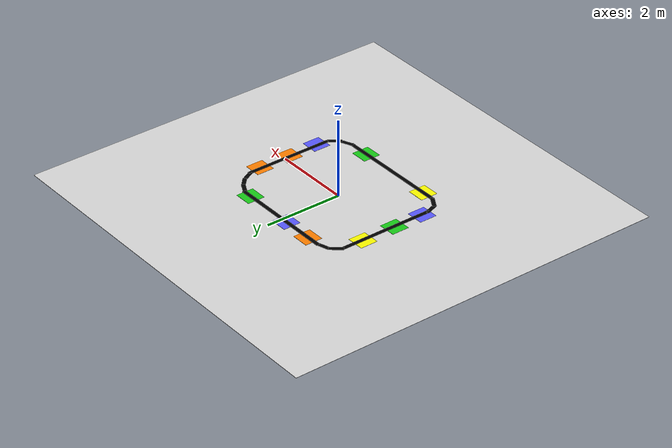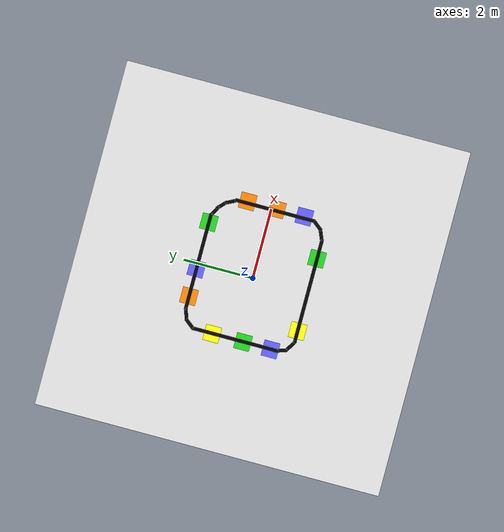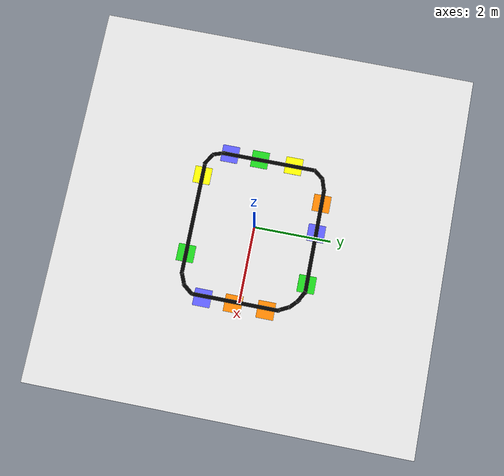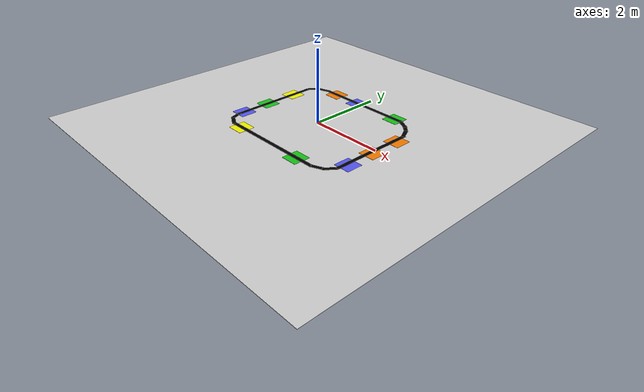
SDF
<sdf version='1.11'>
  <world name='mail_robot_track'>
    <plugin name='gz::sim::systems::Physics' filename='gz-sim-physics-system'/>
    <plugin name='gz::sim::systems::UserCommands' filename='gz-sim-user-commands-system'/>
    <plugin name='gz::sim::systems::SceneBroadcaster' filename='gz-sim-scene-broadcaster-system'/>
    <plugin name='gz::sim::systems::Sensors' filename='gz-sim-sensors-system'>
      <render_engine>ogre2</render_engine>
    </plugin>
    <gravity>0 0 -9.8000000000000007</gravity>
    <magnetic_field>5.5644999999999998e-06 2.2875799999999999e-05 -4.2388400000000002e-05</magnetic_field>
    <atmosphere type='adiabatic'/>
    <physics type='ode'>
      <max_step_size>0.001</max_step_size>
      <real_time_factor>1</real_time_factor>
      <real_time_update_rate>1000</real_time_update_rate>
    </physics>
    <scene>
      <ambient>0.400000006 0.400000006 0.400000006 1</ambient>
      <background>0.699999988 0.699999988 0.699999988 1</background>
      <shadows>true</shadows>
    </scene>
    <model name='floor'>
      <static>true</static>
      <link name='link'>
        <collision name='collision'>
          <geometry>
            <box>
              <size>10 10 0.01</size>
            </box>
          </geometry>
          <surface>
            <friction>
              <ode/>
            </friction>
            <bounce/>
            <contact/>
          </surface>
        </collision>
        <visual name='visual'>
          <geometry>
            <box>
              <size>10 10 0.01</size>
            </box>
          </geometry>
          <material>
            <ambient>0.850000024 0.850000024 0.850000024 1</ambient>
            <diffuse>0.850000024 0.850000024 0.850000024 1</diffuse>
          </material>
        </visual>
        <pose>0 0 0 0 0 0</pose>
        <inertial>
          <pose>0 0 0 0 0 0</pose>
          <mass>1</mass>
          <inertia>
            <ixx>1</ixx>
            <ixy>0</ixy>
            <ixz>0</ixz>
            <iyy>1</iyy>
            <iyz>0</iyz>
            <izz>1</izz>
          </inertia>
        </inertial>
        <enable_wind>false</enable_wind>
      </link>
      <pose>0 0 0 0 0 0</pose>
      <self_collide>false</self_collide>
    </model>
    <model name='track_top'>
      <static>true</static>
      <link name='link'>
        <visual name='visual'>
          <geometry>
            <box>
              <size>2.7999999999999998 0.10000000000000001 0.0050000000000000001</size>
            </box>
          </geometry>
          <material>
            <ambient>0 0 0 1</ambient>
            <diffuse>0 0 0 1</diffuse>
          </material>
        </visual>
        <pose>0 0 0 0 0 0</pose>
        <inertial>
          <pose>0 0 0 0 0 0</pose>
          <mass>1</mass>
          <inertia>
            <ixx>1</ixx>
            <ixy>0</ixy>
            <ixz>0</ixz>
            <iyy>1</iyy>
            <iyz>0</iyz>
            <izz>1</izz>
          </inertia>
        </inertial>
        <enable_wind>false</enable_wind>
      </link>
      <pose>0.059999999999999998 1.6000000000000001 0.02 0 0 0</pose>
      <self_collide>false</self_collide>
    </model>
    <model name='track_bottom'>
      <static>true</static>
      <link name='link'>
        <visual name='visual'>
          <geometry>
            <box>
              <size>3 0.10000000000000001 0.0050000000000000001</size>
            </box>
          </geometry>
          <material>
            <ambient>0 0 0 1</ambient>
            <diffuse>0 0 0 1</diffuse>
          </material>
        </visual>
        <pose>0 0 0 0 0 0</pose>
        <inertial>
          <pose>0 0 0 0 0 0</pose>
          <mass>1</mass>
          <inertia>
            <ixx>1</ixx>
            <ixy>0</ixy>
            <ixz>0</ixz>
            <iyy>1</iyy>
            <iyz>0</iyz>
            <izz>1</izz>
          </inertia>
        </inertial>
        <enable_wind>false</enable_wind>
      </link>
      <pose>0.050000000000000003 -1.6000000000000001 0.02 0 0 0</pose>
      <self_collide>false</self_collide>
    </model>
    <model name='track_left'>
      <static>true</static>
      <link name='link'>
        <visual name='visual'>
          <geometry>
            <box>
              <size>2.5000000000000001 0.10000000000000001 0.0050000000000000001</size>
            </box>
          </geometry>
          <material>
            <ambient>0 0 0 1</ambient>
            <diffuse>0 0 0 1</diffuse>
          </material>
        </visual>
        <pose>0 0 0 0 0 0</pose>
        <inertial>
          <pose>0 0 0 0 0 0</pose>
          <mass>1</mass>
          <inertia>
            <ixx>1</ixx>
            <ixy>0</ixy>
            <ixz>0</ixz>
            <iyy>1</iyy>
            <iyz>0</iyz>
            <izz>1</izz>
          </inertia>
        </inertial>
        <enable_wind>false</enable_wind>
      </link>
      <pose>-1.79 0.02 0.02 0 0 1.5708</pose>
      <self_collide>false</self_collide>
    </model>
    <model name='track_right'>
      <static>true</static>
      <link name='link'>
        <visual name='visual'>
          <geometry>
            <box>
              <size>2.3000000000000001 0.10000000000000001 0.0050000000000000001</size>
            </box>
          </geometry>
          <material>
            <ambient>0 0 0 1</ambient>
            <diffuse>0 0 0 1</diffuse>
          </material>
        </visual>
        <pose>0 0 0 0 0 0</pose>
        <inertial>
          <pose>0 0 0 0 0 0</pose>
          <mass>1</mass>
          <inertia>
            <ixx>1</ixx>
            <ixy>0</ixy>
            <ixz>0</ixz>
            <iyy>1</iyy>
            <iyz>0</iyz>
            <izz>1</izz>
          </inertia>
        </inertial>
        <enable_wind>false</enable_wind>
      </link>
      <pose>2 -0.1 0.02 0 0 1.5708000000000006</pose>
      <self_collide>false</self_collide>
    </model>
    <model name='corner_tr_1'>
      <static>true</static>
      <link name='link'>
        <visual name='visual'>
          <geometry>
            <box>
              <size>0.34999999999999998 0.10000000000000001 0.0050000000000000001</size>
            </box>
          </geometry>
          <material>
            <ambient>0 0 0 1</ambient>
            <diffuse>0 0 0 1</diffuse>
          </material>
        </visual>
        <pose>0 0 0 0 0 0</pose>
        <inertial>
          <pose>0 0 0 0 0 0</pose>
          <mass>1</mass>
          <inertia>
            <ixx>1</ixx>
            <ixy>0</ixy>
            <ixz>0</ixz>
            <iyy>1</iyy>
            <iyz>0</iyz>
            <izz>1</izz>
          </inertia>
        </inertial>
        <enable_wind>false</enable_wind>
      </link>
      <pose>1.55 1.52 0.02 0 0 -0.5</pose>
      <self_collide>false</self_collide>
    </model>
    <model name='corner_tr_2'>
      <static>true</static>
      <link name='link'>
        <visual name='visual'>
          <geometry>
            <box>
              <size>0.34999999999999998 0.10000000000000001 0.0050000000000000001</size>
            </box>
          </geometry>
          <material>
            <ambient>0 0 0 1</ambient>
            <diffuse>0 0 0 1</diffuse>
          </material>
        </visual>
        <pose>0 0 0 0 0 0</pose>
        <inertial>
          <pose>0 0 0 0 0 0</pose>
          <mass>1</mass>
          <inertia>
            <ixx>1</ixx>
            <ixy>0</ixy>
            <ixz>0</ixz>
            <iyy>1</iyy>
            <iyz>0</iyz>
            <izz>1</izz>
          </inertia>
        </inertial>
        <enable_wind>false</enable_wind>
      </link>
      <pose>1.9199999999999999 1.1499999999999999 0.02 0 0 -1.1000000000000001</pose>
      <self_collide>false</self_collide>
    </model>
    <model name='corner_tr_3'>
      <static>true</static>
      <link name='link'>
        <visual name='visual'>
          <geometry>
            <box>
              <size>0.34999999999999998 0.10000000000000001 0.0050000000000000001</size>
            </box>
          </geometry>
          <material>
            <ambient>0 0 0 1</ambient>
            <diffuse>0 0 0 1</diffuse>
          </material>
        </visual>
        <pose>0 0 0 0 0 0</pose>
        <inertial>
          <pose>0 0 0 0 0 0</pose>
          <mass>1</mass>
          <inertia>
            <ixx>1</ixx>
            <ixy>0</ixy>
            <ixz>0</ixz>
            <iyy>1</iyy>
            <iyz>0</iyz>
            <izz>1</izz>
          </inertia>
        </inertial>
        <enable_wind>false</enable_wind>
      </link>
      <pose>1.75 1.3799999999999999 0.02 0 0 -0.75000000000000011</pose>
      <self_collide>false</self_collide>
    </model>
    <model name='corner_br_2'>
      <static>true</static>
      <link name='link'>
        <visual name='visual'>
          <geometry>
            <box>
              <size>0.34999999999999998 0.10000000000000001 0.0050000000000000001</size>
            </box>
          </geometry>
          <material>
            <ambient>0 0 0 1</ambient>
            <diffuse>0 0 0 1</diffuse>
          </material>
        </visual>
        <pose>0 0 0 0 0 0</pose>
        <inertial>
          <pose>0 0 0 0 0 0</pose>
          <mass>1</mass>
          <inertia>
            <ixx>1</ixx>
            <ixy>0</ixy>
            <ixz>0</ixz>
            <iyy>1</iyy>
            <iyz>0</iyz>
            <izz>1</izz>
          </inertia>
        </inertial>
        <enable_wind>false</enable_wind>
      </link>
      <pose>1.8999999999999999 -1.3700000000000001 0.02 0 0 0.90000000000000002</pose>
      <self_collide>false</self_collide>
    </model>
    <model name='corner_br_3'>
      <static>true</static>
      <link name='link'>
        <visual name='visual'>
          <geometry>
            <box>
              <size>0.34999999999999998 0.10000000000000001 0.0050000000000000001</size>
            </box>
          </geometry>
          <material>
            <ambient>0 0 0 1</ambient>
            <diffuse>0 0 0 1</diffuse>
          </material>
        </visual>
        <pose>0 0 0 0 0 0</pose>
        <inertial>
          <pose>0 0 0 0 0 0</pose>
          <mass>1</mass>
          <inertia>
            <ixx>1</ixx>
            <ixy>0</ixy>
            <ixz>0</ixz>
            <iyy>1</iyy>
            <iyz>0</iyz>
            <izz>1</izz>
          </inertia>
        </inertial>
        <enable_wind>false</enable_wind>
      </link>
      <pose>1.6599999999999999 -1.54 0.02 0 0 0.39999999999999986</pose>
      <self_collide>false</self_collide>
    </model>
    <model name='corner_bl_1'>
      <static>true</static>
      <link name='link'>
        <visual name='visual'>
          <geometry>
            <box>
              <size>0.34999999999999998 0.10000000000000001 0.0050000000000000001</size>
            </box>
          </geometry>
          <material>
            <ambient>0 0 0 1</ambient>
            <diffuse>0 0 0 1</diffuse>
          </material>
        </visual>
        <pose>0 0 0 0 0 0</pose>
        <inertial>
          <pose>0 0 0 0 0 0</pose>
          <mass>1</mass>
          <inertia>
            <ixx>1</ixx>
            <ixy>0</ixy>
            <ixz>0</ixz>
            <iyy>1</iyy>
            <iyz>0</iyz>
            <izz>1</izz>
          </inertia>
        </inertial>
        <enable_wind>false</enable_wind>
      </link>
      <pose>-1.55 -1.53 0.02 0 0 2.6000000000000001</pose>
      <self_collide>false</self_collide>
    </model>
    <model name='corner_bl_2'>
      <static>true</static>
      <link name='link'>
        <visual name='visual'>
          <geometry>
            <box>
              <size>0.34999999999999998 0.10000000000000001 0.0050000000000000001</size>
            </box>
          </geometry>
          <material>
            <ambient>0 0 0 1</ambient>
            <diffuse>0 0 0 1</diffuse>
          </material>
        </visual>
        <pose>0 0 0 0 0 0</pose>
        <inertial>
          <pose>0 0 0 0 0 0</pose>
          <mass>1</mass>
          <inertia>
            <ixx>1</ixx>
            <ixy>0</ixy>
            <ixz>0</ixz>
            <iyy>1</iyy>
            <iyz>0</iyz>
            <izz>1</izz>
          </inertia>
        </inertial>
        <enable_wind>false</enable_wind>
      </link>
      <pose>-1.75 -1.3 0.02 0 0 1.8999999999999999</pose>
      <self_collide>false</self_collide>
    </model>
    <model name='corner_tl_2'>
      <static>true</static>
      <link name='link'>
        <visual name='visual'>
          <geometry>
            <box>
              <size>0.34999999999999998 0.10000000000000001 0.0050000000000000001</size>
            </box>
          </geometry>
          <material>
            <ambient>0 0 0 1</ambient>
            <diffuse>0 0 0 1</diffuse>
          </material>
        </visual>
        <pose>0 0 0 0 0 0</pose>
        <inertial>
          <pose>0 0 0 0 0 0</pose>
          <mass>1</mass>
          <inertia>
            <ixx>1</ixx>
            <ixy>0</ixy>
            <ixz>0</ixz>
            <iyy>1</iyy>
            <iyz>0</iyz>
            <izz>1</izz>
          </inertia>
        </inertial>
        <enable_wind>false</enable_wind>
      </link>
      <pose>-1.7 1.3799999999999999 0.02 0 0 0.90000000000000002</pose>
      <self_collide>false</self_collide>
    </model>
    <model name='corner_tl_3'>
      <static>true</static>
      <link name='link'>
        <visual name='visual'>
          <geometry>
            <box>
              <size>0.34999999999999998 0.10000000000000001 0.0050000000000000001</size>
            </box>
          </geometry>
          <material>
            <ambient>0 0 0 1</ambient>
            <diffuse>0 0 0 1</diffuse>
          </material>
        </visual>
        <pose>0 0 0 0 0 0</pose>
        <inertial>
          <pose>0 0 0 0 0 0</pose>
          <mass>1</mass>
          <inertia>
            <ixx>1</ixx>
            <ixy>0</ixy>
            <ixz>0</ixz>
            <iyy>1</iyy>
            <iyz>0</iyz>
            <izz>1</izz>
          </inertia>
        </inertial>
        <enable_wind>false</enable_wind>
      </link>
      <pose>-1.45 1.55 0.02 0 0 0.30000000000000016</pose>
      <self_collide>false</self_collide>
    </model>
    <model name='office_2'>
      <static>true</static>
      <link name='link'>
        <visual name='visual'>
          <geometry>
            <box>
              <size>0.45000000000000001 0.45000000000000001 0.0050000000000000001</size>
            </box>
          </geometry>
          <material>
            <ambient>1 1 0 1</ambient>
            <diffuse>1 1 0 1</diffuse>
          </material>
        </visual>
        <pose>0 0 0 0 0 0</pose>
        <inertial>
          <pose>0 0 0 0 0 0</pose>
          <mass>1</mass>
          <inertia>
            <ixx>1</ixx>
            <ixy>0</ixy>
            <ixz>0</ixz>
            <iyy>1</iyy>
            <iyz>0</iyz>
            <izz>1</izz>
          </inertia>
        </inertial>
        <enable_wind>false</enable_wind>
      </link>
      <pose>-1.1000000000000001 -1.6000000000000001 0.012 0 0 0</pose>
      <self_collide>false</self_collide>
    </model>
    <model name='office_3'>
      <static>true</static>
      <link name='link'>
        <visual name='visual'>
          <geometry>
            <box>
              <size>0.45000000000000001 0.45000000000000001 0.0050000000000000001</size>
            </box>
          </geometry>
          <material>
            <ambient>0.100000001 0.800000012 0.100000001 1</ambient>
            <diffuse>0.100000001 0.800000012 0.100000001 1</diffuse>
          </material>
        </visual>
        <pose>0 0 0 0 0 0</pose>
        <inertial>
          <pose>0 0 0 0 0 0</pose>
          <mass>1</mass>
          <inertia>
            <ixx>1</ixx>
            <ixy>0</ixy>
            <ixz>0</ixz>
            <iyy>1</iyy>
            <iyz>0</iyz>
            <izz>1</izz>
          </inertia>
        </inertial>
        <enable_wind>false</enable_wind>
      </link>
      <pose>1 -1.6000000000000001 0.012 0 0 0</pose>
      <self_collide>false</self_collide>
    </model>
    <model name='office_4'>
      <static>true</static>
      <link name='link'>
        <visual name='visual'>
          <geometry>
            <box>
              <size>0.45000000000000001 0.45000000000000001 0.0050000000000000001</size>
            </box>
          </geometry>
          <material>
            <ambient>0.349999994 0.349999994 1 1</ambient>
            <diffuse>0.349999994 0.349999994 1 1</diffuse>
          </material>
        </visual>
        <pose>0 0 0 0 0 0</pose>
        <inertial>
          <pose>0 0 0 0 0 0</pose>
          <mass>1</mass>
          <inertia>
            <ixx>1</ixx>
            <ixy>0</ixy>
            <ixz>0</ixz>
            <iyy>1</iyy>
            <iyz>0</iyz>
            <izz>1</izz>
          </inertia>
        </inertial>
        <enable_wind>false</enable_wind>
      </link>
      <pose>2.0499999999999998 -0.94999999999999996 0.012 0 0 0</pose>
      <self_collide>false</self_collide>
    </model>
    <model name='office_5'>
      <static>true</static>
      <link name='link'>
        <visual name='visual'>
          <geometry>
            <box>
              <size>0.45000000000000001 0.45000000000000001 0.0050000000000000001</size>
            </box>
          </geometry>
          <material>
            <ambient>1 0.5 0 1</ambient>
            <diffuse>1 0.5 0 1</diffuse>
          </material>
        </visual>
        <pose>0 0 0 0 0 0</pose>
        <inertial>
          <pose>0 0 0 0 0 0</pose>
          <mass>1</mass>
          <inertia>
            <ixx>1</ixx>
            <ixy>0</ixy>
            <ixz>0</ixz>
            <iyy>1</iyy>
            <iyz>0</iyz>
            <izz>1</izz>
          </inertia>
        </inertial>
        <enable_wind>false</enable_wind>
      </link>
      <pose>2.0499999999999998 -0.14999999999999999 0.012 0 0 0</pose>
      <self_collide>false</self_collide>
    </model>
    <model name='office_6'>
      <static>true</static>
      <link name='link'>
        <visual name='visual'>
          <geometry>
            <box>
              <size>0.45000000000000001 0.45000000000000001 0.0050000000000000001</size>
            </box>
          </geometry>
          <material>
            <ambient>1 0.5 0 1</ambient>
            <diffuse>1 0.5 0 1</diffuse>
          </material>
        </visual>
        <pose>0 0 0 0 0 0</pose>
        <inertial>
          <pose>0 0 0 0 0 0</pose>
          <mass>1</mass>
          <inertia>
            <ixx>1</ixx>
            <ixy>0</ixy>
            <ixz>0</ixz>
            <iyy>1</iyy>
            <iyz>0</iyz>
            <izz>1</izz>
          </inertia>
        </inertial>
        <enable_wind>false</enable_wind>
      </link>
      <pose>2.0499999999999998 0.69999999999999996 0.012 0 0 0</pose>
      <self_collide>false</self_collide>
    </model>
    <model name='office_7'>
      <static>true</static>
      <link name='link'>
        <visual name='visual'>
          <geometry>
            <box>
              <size>0.45000000000000001 0.45000000000000001 0.0050000000000000001</size>
            </box>
          </geometry>
          <material>
            <ambient>0.100000001 0.800000012 0.100000001 1</ambient>
            <diffuse>0.100000001 0.800000012 0.100000001 1</diffuse>
          </material>
        </visual>
        <pose>0 0 0 0 0 0</pose>
        <inertial>
          <pose>0 0 0 0 0 0</pose>
          <mass>1</mass>
          <inertia>
            <ixx>1</ixx>
            <ixy>0</ixy>
            <ixz>0</ixz>
            <iyy>1</iyy>
            <iyz>0</iyz>
            <izz>1</izz>
          </inertia>
        </inertial>
        <enable_wind>false</enable_wind>
      </link>
      <pose>1.2 1.6000000000000001 0.012 0 0 0</pose>
      <self_collide>false</self_collide>
    </model>
    <model name='office_8'>
      <static>true</static>
      <link name='link'>
        <visual name='visual'>
          <geometry>
            <box>
              <size>0.45000000000000001 0.45000000000000001 0.0050000000000000001</size>
            </box>
          </geometry>
          <material>
            <ambient>0.349999994 0.349999994 1 1</ambient>
            <diffuse>0.349999994 0.349999994 1 1</diffuse>
          </material>
        </visual>
        <pose>0 0 0 0 0 0</pose>
        <inertial>
          <pose>0 0 0 0 0 0</pose>
          <mass>1</mass>
          <inertia>
            <ixx>1</ixx>
            <ixy>0</ixy>
            <ixz>0</ixz>
            <iyy>1</iyy>
            <iyz>0</iyz>
            <izz>1</izz>
          </inertia>
        </inertial>
        <enable_wind>false</enable_wind>
      </link>
      <pose>-0.14999999999999999 1.6000000000000001 0.012 0 0 0</pose>
      <self_collide>false</self_collide>
    </model>
    <model name='office_9'>
      <static>true</static>
      <link name='link'>
        <visual name='visual'>
          <geometry>
            <box>
              <size>0.45000000000000001 0.45000000000000001 0.0050000000000000001</size>
            </box>
          </geometry>
          <material>
            <ambient>1 0.5 0 1</ambient>
            <diffuse>1 0.5 0 1</diffuse>
          </material>
        </visual>
        <pose>0 0 0 0 0 0</pose>
        <inertial>
          <pose>0 0 0 0 0 0</pose>
          <mass>1</mass>
          <inertia>
            <ixx>1</ixx>
            <ixy>0</ixy>
            <ixz>0</ixz>
            <iyy>1</iyy>
            <iyz>0</iyz>
            <izz>1</izz>
          </inertia>
        </inertial>
        <enable_wind>false</enable_wind>
      </link>
      <pose>-0.94999999999999996 1.6000000000000001 0.012 0 0 0</pose>
      <self_collide>false</self_collide>
    </model>
    <model name='office_10'>
      <static>true</static>
      <link name='link'>
        <visual name='visual'>
          <geometry>
            <box>
              <size>0.45000000000000001 0.45000000000000001 0.0050000000000000001</size>
            </box>
          </geometry>
          <material>
            <ambient>1 1 0 1</ambient>
            <diffuse>1 1 0 1</diffuse>
          </material>
        </visual>
        <pose>0 0 0 0 0 0</pose>
        <inertial>
          <pose>0 0 0 0 0 0</pose>
          <mass>1</mass>
          <inertia>
            <ixx>1</ixx>
            <ixy>0</ixy>
            <ixz>0</ixz>
            <iyy>1</iyy>
            <iyz>0</iyz>
            <izz>1</izz>
          </inertia>
        </inertial>
        <enable_wind>false</enable_wind>
      </link>
      <pose>-1.8 0.69999999999999996 0.012 0 0 0</pose>
      <self_collide>false</self_collide>
    </model>
    <model name='office_11'>
      <static>true</static>
      <link name='link'>
        <visual name='visual'>
          <geometry>
            <box>
              <size>0.45000000000000001 0.45000000000000001 0.0050000000000000001</size>
            </box>
          </geometry>
          <material>
            <ambient>0.100000001 0.800000012 0.100000001 1</ambient>
            <diffuse>0.100000001 0.800000012 0.100000001 1</diffuse>
          </material>
        </visual>
        <pose>0 0 0 0 0 0</pose>
        <inertial>
          <pose>0 0 0 0 0 0</pose>
          <mass>1</mass>
          <inertia>
            <ixx>1</ixx>
            <ixy>0</ixy>
            <ixz>0</ixz>
            <iyy>1</iyy>
            <iyz>0</iyz>
            <izz>1</izz>
          </inertia>
        </inertial>
        <enable_wind>false</enable_wind>
      </link>
      <pose>-1.8 -0.20000000000000001 0.012 0 0 0</pose>
      <self_collide>false</self_collide>
    </model>
    <model name='office_12'>
      <static>true</static>
      <link name='link'>
        <visual name='visual'>
          <geometry>
            <box>
              <size>0.45000000000000001 0.45000000000000001 0.0050000000000000001</size>
            </box>
          </geometry>
          <material>
            <ambient>0.349999994 0.349999994 1 1</ambient>
            <diffuse>0.349999994 0.349999994 1 1</diffuse>
          </material>
        </visual>
        <pose>0 0 0 0 0 0</pose>
        <inertial>
          <pose>0 0 0 0 0 0</pose>
          <mass>1</mass>
          <inertia>
            <ixx>1</ixx>
            <ixy>0</ixy>
            <ixz>0</ixz>
            <iyy>1</iyy>
            <iyz>0</iyz>
            <izz>1</izz>
          </inertia>
        </inertial>
        <enable_wind>false</enable_wind>
      </link>
      <pose>-1.8 -1 0.012 0 0 0</pose>
      <self_collide>false</self_collide>
    </model>
    <light name='sun' type='directional'>
      <pose>0 0 10 0 0 0</pose>
      <cast_shadows>false</cast_shadows>
      <intensity>1</intensity>
      <direction>-0.5 0.10000000000000001 -1</direction>
      <diffuse>1 1 1 1</diffuse>
      <specular>0.200000003 0.200000003 0.200000003 1</specular>
      <attenuation>
        <range>10</range>
        <linear>1</linear>
        <constant>1</constant>
        <quadratic>0</quadratic>
      </attenuation>
      <spot>
        <inner_angle>0</inner_angle>
        <outer_angle>0</outer_angle>
        <falloff>0</falloff>
      </spot>
    </light>
  </world>
</sdf>
